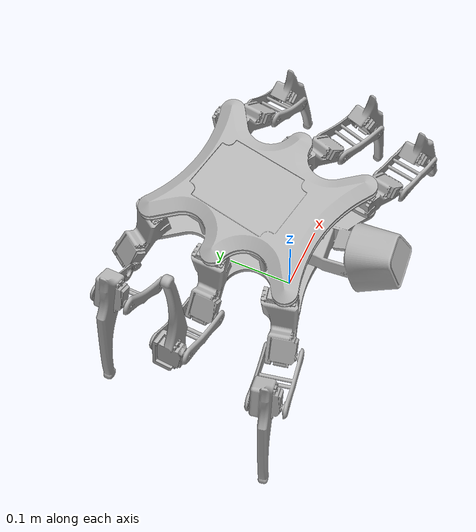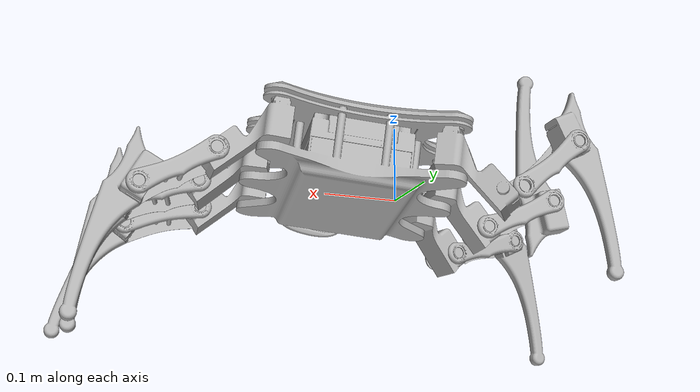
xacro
<?xml version="1.0" ?>
<robot name="zamin" xmlns:xacro="http://www.ros.org/wiki/xacro">

<xacro:include filename="$(find zamin_description)/urdf/materials.xacro" />
<xacro:include filename="$(find zamin_description)/urdf/zamin.trans" />
<xacro:include filename="$(find zamin_description)/urdf/zamin.gazebo" />
<link name="base_link">
  <inertial>
    <origin xyz="0.1000352418955988 0.06495559041692857 0.006960329203092366" rpy="0 0 0"/>
    <mass value="14.09466584247892"/>
    <inertia ixx="0.167546" iyy="0.075339" izz="0.199615" ixy="-0.012339" iyz="0.003184" ixz="-0.003868"/>
  </inertial>
  <visual>
    <origin xyz="0 0 0" rpy="0 0 0"/>
    <geometry>
      <mesh filename="package://zamin_description/meshes/base_link.stl" scale="0.001 0.001 0.001"/>
    </geometry>
    <material name="silver"/>
  </visual>
  <collision>
    <origin xyz="0 0 0" rpy="0 0 0"/>
    <geometry>
      <mesh filename="package://zamin_description/meshes/base_link.stl" scale="0.001 0.001 0.001"/>
    </geometry>
  </collision>
</link>

<link name="leg_1_link_2_1">
  <inertial>
    <origin xyz="-0.020798247907869903 -0.003004122621169035 -0.05840364105605461" rpy="0 0 0"/>
    <mass value="1.012661950148346"/>
    <inertia ixx="0.001014" iyy="0.001236" izz="0.000891" ixy="-0.000197" iyz="-0.00022" ixz="-0.000489"/>
  </inertial>
  <visual>
    <origin xyz="0.031628 0.00646 -0.021757" rpy="0 0 0"/>
    <geometry>
      <mesh filename="package://zamin_description/meshes/leg_1_link_2_1.stl" scale="0.001 0.001 0.001"/>
    </geometry>
    <material name="silver"/>
  </visual>
  <collision>
    <origin xyz="0.031628 0.00646 -0.021757" rpy="0 0 0"/>
    <geometry>
      <mesh filename="package://zamin_description/meshes/leg_1_link_2_1.stl" scale="0.001 0.001 0.001"/>
    </geometry>
  </collision>
</link>

<link name="leg_1_link_3_1">
  <inertial>
    <origin xyz="-0.05232794213563882 0.015850438170881664 0.012387465467738626" rpy="0 0 0"/>
    <mass value="0.22871600239093776"/>
    <inertia ixx="0.000208" iyy="0.000275" izz="0.000422" ixy="-1e-05" iyz="1.8e-05" ixz="6.7e-05"/>
  </inertial>
  <visual>
    <origin xyz="0.080903 0.053284 0.063455" rpy="0 0 0"/>
    <geometry>
      <mesh filename="package://zamin_description/meshes/leg_1_link_3_1.stl" scale="0.001 0.001 0.001"/>
    </geometry>
    <material name="silver"/>
  </visual>
  <collision>
    <origin xyz="0.080903 0.053284 0.063455" rpy="0 0 0"/>
    <geometry>
      <mesh filename="package://zamin_description/meshes/leg_1_link_3_1.stl" scale="0.001 0.001 0.001"/>
    </geometry>
  </collision>
</link>

<link name="leg_1_link_1_1">
  <inertial>
    <origin xyz="-0.024118708207036738 0.023198280722906535 -0.02416394528421939" rpy="0 0 0"/>
    <mass value="0.907399585528797"/>
    <inertia ixx="0.0028" iyy="0.003123" izz="0.0006" ixy="-0.00015" iyz="-0.00034" ixz="-0.000941"/>
  </inertial>
  <visual>
    <origin xyz="0.175395 0.070243 0.035462" rpy="0 0 0"/>
    <geometry>
      <mesh filename="package://zamin_description/meshes/leg_1_link_1_1.stl" scale="0.001 0.001 0.001"/>
    </geometry>
    <material name="silver"/>
  </visual>
  <collision>
    <origin xyz="0.175395 0.070243 0.035462" rpy="0 0 0"/>
    <geometry>
      <mesh filename="package://zamin_description/meshes/leg_1_link_1_1.stl" scale="0.001 0.001 0.001"/>
    </geometry>
  </collision>
</link>

<link name="leg_2_link_3__1__1">
  <inertial>
    <origin xyz="-0.020572592986036774 0.0037045224840009106 -0.05844286708274243" rpy="0 0 0"/>
    <mass value="1.0126607300527286"/>
    <inertia ixx="0.000943" iyy="0.001319" izz="0.000879" ixy="-0.000108" iyz="-8.7e-05" ixz="-0.00053"/>
  </inertial>
  <visual>
    <origin xyz="0.012855 -0.122421 -0.022834" rpy="0 0 0"/>
    <geometry>
      <mesh filename="package://zamin_description/meshes/leg_2_link_3__1__1.stl" scale="0.001 0.001 0.001"/>
    </geometry>
    <material name="silver"/>
  </visual>
  <collision>
    <origin xyz="0.012855 -0.122421 -0.022834" rpy="0 0 0"/>
    <geometry>
      <mesh filename="package://zamin_description/meshes/leg_2_link_3__1__1.stl" scale="0.001 0.001 0.001"/>
    </geometry>
  </collision>
</link>

<link name="leg_2_link_2_1">
  <inertial>
    <origin xyz="-0.044921169422652035 0.02724896339450003 0.019557009209572804" rpy="0 0 0"/>
    <mass value="0.22871574861196214"/>
    <inertia ixx="0.000229" iyy="0.000276" izz="0.000399" ixy="3e-06" iyz="-4e-06" ixz="9.5e-05"/>
  </inertial>
  <visual>
    <origin xyz="0.071248 -0.091046 0.063695" rpy="0 0 0"/>
    <geometry>
      <mesh filename="package://zamin_description/meshes/leg_2_link_2_1.stl" scale="0.001 0.001 0.001"/>
    </geometry>
    <material name="silver"/>
  </visual>
  <collision>
    <origin xyz="0.071248 -0.091046 0.063695" rpy="0 0 0"/>
    <geometry>
      <mesh filename="package://zamin_description/meshes/leg_2_link_2_1.stl" scale="0.001 0.001 0.001"/>
    </geometry>
  </collision>
</link>

<link name="leg_3_link_3_1">
  <inertial>
    <origin xyz="-0.01471532830032863 0.017066498243044487 -0.05783367655412228" rpy="0 0 0"/>
    <mass value="1.0126620006859057"/>
    <inertia ixx="0.000964" iyy="0.001294" izz="0.000883" ixy="0.000135" iyz="0.000218" ixz="-0.000494"/>
  </inertial>
  <visual>
    <origin xyz="-0.02145 -0.24803 -0.025922" rpy="0 0 0"/>
    <geometry>
      <mesh filename="package://zamin_description/meshes/leg_3_link_3_1.stl" scale="0.001 0.001 0.001"/>
    </geometry>
    <material name="silver"/>
  </visual>
  <collision>
    <origin xyz="-0.02145 -0.24803 -0.025922" rpy="0 0 0"/>
    <geometry>
      <mesh filename="package://zamin_description/meshes/leg_3_link_3_1.stl" scale="0.001 0.001 0.001"/>
    </geometry>
  </collision>
</link>

<link name="leg_3_link_2_1">
  <inertial>
    <origin xyz="-0.02490321172110873 0.04393892851157011 0.024331856966839732" rpy="0 0 0"/>
    <mass value="0.2287158182027981"/>
    <inertia ixx="0.000248" iyy="0.000272" izz="0.000385" ixy="1.3e-05" iyz="-6.3e-05" ixz="8.6e-05"/>
  </inertial>
  <visual>
    <origin xyz="0.042897 -0.255314 0.061759" rpy="0 0 0"/>
    <geometry>
      <mesh filename="package://zamin_description/meshes/leg_3_link_2_1.stl" scale="0.001 0.001 0.001"/>
    </geometry>
    <material name="silver"/>
  </visual>
  <collision>
    <origin xyz="0.042897 -0.255314 0.061759" rpy="0 0 0"/>
    <geometry>
      <mesh filename="package://zamin_description/meshes/leg_3_link_2_1.stl" scale="0.001 0.001 0.001"/>
    </geometry>
  </collision>
</link>

<link name="leg_3_link_1_1">
  <inertial>
    <origin xyz="0.008717952333481188 0.029799584273488944 -0.027197642277439673" rpy="0 0 0"/>
    <mass value="0.9073986789846695"/>
    <inertia ixx="0.00313" iyy="0.003181" izz="0.000211" ixy="8e-06" iyz="3.3e-05" ixz="0.000122"/>
  </inertial>
  <visual>
    <origin xyz="0.11862 -0.300684 0.014775" rpy="0 0 0"/>
    <geometry>
      <mesh filename="package://zamin_description/meshes/leg_3_link_1_1.stl" scale="0.001 0.001 0.001"/>
    </geometry>
    <material name="silver"/>
  </visual>
  <collision>
    <origin xyz="0.11862 -0.300684 0.014775" rpy="0 0 0"/>
    <geometry>
      <mesh filename="package://zamin_description/meshes/leg_3_link_1_1.stl" scale="0.001 0.001 0.001"/>
    </geometry>
  </collision>
</link>

<link name="leg_4_link_3_1">
  <inertial>
    <origin xyz="0.034731263262566064 -0.00392802530506986 -0.05135714502309486" rpy="0 0 0"/>
    <mass value="1.0132520108724496"/>
    <inertia ixx="0.000783" iyy="0.00123" izz="0.001141" ixy="0.000259" iyz="-0.000176" ixz="0.000456"/>
  </inertial>
  <visual>
    <origin xyz="-0.178057 0.050638 -0.048896" rpy="0 0 0"/>
    <geometry>
      <mesh filename="package://zamin_description/meshes/leg_4_link_3_1.stl" scale="0.001 0.001 0.001"/>
    </geometry>
    <material name="silver"/>
  </visual>
  <collision>
    <origin xyz="-0.178057 0.050638 -0.048896" rpy="0 0 0"/>
    <geometry>
      <mesh filename="package://zamin_description/meshes/leg_4_link_3_1.stl" scale="0.001 0.001 0.001"/>
    </geometry>
  </collision>
</link>

<link name="leg_4_link_2_1">
  <inertial>
    <origin xyz="0.052809765042208995 0.014176083454792127 -0.010373790935542228" rpy="0 0 0"/>
    <mass value="0.2286696896275042"/>
    <inertia ixx="0.000203" iyy="0.000273" izz="0.000428" ixy="1.5e-05" iyz="-1.5e-05" ixz="5.6e-05"/>
  </inertial>
  <visual>
    <origin xyz="-0.24643 0.099265 0.021536" rpy="0 0 0"/>
    <geometry>
      <mesh filename="package://zamin_description/meshes/leg_4_link_2_1.stl" scale="0.001 0.001 0.001"/>
    </geometry>
    <material name="silver"/>
  </visual>
  <collision>
    <origin xyz="-0.24643 0.099265 0.021536" rpy="0 0 0"/>
    <geometry>
      <mesh filename="package://zamin_description/meshes/leg_4_link_2_1.stl" scale="0.001 0.001 0.001"/>
    </geometry>
  </collision>
</link>

<link name="leg_4_link_1_1">
  <inertial>
    <origin xyz="0.029407532301332473 0.022677687832287977 -0.018492432077358373" rpy="0 0 0"/>
    <mass value="0.9074869947367368"/>
    <inertia ixx="0.002339" iyy="0.003123" izz="0.001068" ixy="0.00022" iyz="-0.000309" ixz="0.001301"/>
  </inertial>
  <visual>
    <origin xyz="-0.341523 0.119515 0.044929" rpy="0 0 0"/>
    <geometry>
      <mesh filename="package://zamin_description/meshes/leg_4_link_1_1.stl" scale="0.001 0.001 0.001"/>
    </geometry>
    <material name="silver"/>
  </visual>
  <collision>
    <origin xyz="-0.341523 0.119515 0.044929" rpy="0 0 0"/>
    <geometry>
      <mesh filename="package://zamin_description/meshes/leg_4_link_1_1.stl" scale="0.001 0.001 0.001"/>
    </geometry>
  </collision>
</link>

<link name="leg_5_link_3_1">
  <inertial>
    <origin xyz="0.03418268792955556 -0.007023107521480734 -0.051395778898290834" rpy="0 0 0"/>
    <mass value="1.0132520108724496"/>
    <inertia ixx="0.000844" iyy="0.001174" izz="0.001136" ixy="0.000296" iyz="-0.000224" ixz="0.000437"/>
  </inertial>
  <visual>
    <origin xyz="-0.212362 -0.074971 -0.051984" rpy="0 0 0"/>
    <geometry>
      <mesh filename="package://zamin_description/meshes/leg_5_link_3_1.stl" scale="0.001 0.001 0.001"/>
    </geometry>
    <material name="silver"/>
  </visual>
  <collision>
    <origin xyz="-0.212362 -0.074971 -0.051984" rpy="0 0 0"/>
    <geometry>
      <mesh filename="package://zamin_description/meshes/leg_5_link_3_1.stl" scale="0.001 0.001 0.001"/>
    </geometry>
  </collision>
</link>

<link name="leg_5_llink_2_1">
  <inertial>
    <origin xyz="0.05422235004203746 0.008389679172791733 -0.0114936184371848" rpy="0 0 0"/>
    <mass value="0.2286696896275042"/>
    <inertia ixx="0.000206" iyy="0.00027" izz="0.000429" ixy="2.2e-05" iyz="-2.2e-05" ixz="5.2e-05"/>
  </inertial>
  <visual>
    <origin xyz="-0.275077 -0.020076 0.019104" rpy="0 0 0"/>
    <geometry>
      <mesh filename="package://zamin_description/meshes/leg_5_llink_2_1.stl" scale="0.001 0.001 0.001"/>
    </geometry>
    <material name="silver"/>
  </visual>
  <collision>
    <origin xyz="-0.275077 -0.020076 0.019104" rpy="0 0 0"/>
    <geometry>
      <mesh filename="package://zamin_description/meshes/leg_5_llink_2_1.stl" scale="0.001 0.001 0.001"/>
    </geometry>
  </collision>
</link>

<link name="leg_5_link_1_1">
  <inertial>
    <origin xyz="0.028061540825260523 0.020927835811465526 -0.022263178357636942" rpy="0 0 0"/>
    <mass value="0.9074869947367368"/>
    <inertia ixx="0.002789" iyy="0.003125" izz="0.000616" ixy="0.000147" iyz="-0.000317" ixz="0.000967"/>
  </inertial>
  <visual>
    <origin xyz="-0.367591 0.010327 0.041837" rpy="0 0 0"/>
    <geometry>
      <mesh filename="package://zamin_description/meshes/leg_5_link_1_1.stl" scale="0.001 0.001 0.001"/>
    </geometry>
    <material name="silver"/>
  </visual>
  <collision>
    <origin xyz="-0.367591 0.010327 0.041837" rpy="0 0 0"/>
    <geometry>
      <mesh filename="package://zamin_description/meshes/leg_5_link_1_1.stl" scale="0.001 0.001 0.001"/>
    </geometry>
  </collision>
</link>

<link name="leg_6_link_3_1">
  <inertial>
    <origin xyz="0.034896122067995666 -0.0020427463356449127 -0.051355316337585624" rpy="0 0 0"/>
    <mass value="1.0132520108724496"/>
    <inertia ixx="0.000751" iyy="0.00126" izz="0.001143" ixy="0.00023" iyz="-0.000146" ixz="0.000465"/>
  </inertial>
  <visual>
    <origin xyz="-0.231135 -0.203852 -0.053061" rpy="0 0 0"/>
    <geometry>
      <mesh filename="package://zamin_description/meshes/leg_6_link_3_1.stl" scale="0.001 0.001 0.001"/>
    </geometry>
    <material name="silver"/>
  </visual>
  <collision>
    <origin xyz="-0.231135 -0.203852 -0.053061" rpy="0 0 0"/>
    <geometry>
      <mesh filename="package://zamin_description/meshes/leg_6_link_3_1.stl" scale="0.001 0.001 0.001"/>
    </geometry>
  </collision>
</link>

<link name="leg_6_link_2_1">
  <inertial>
    <origin xyz="0.04752311177088503 0.018310662194375382 -0.023426808330500083" rpy="0 0 0"/>
    <mass value="0.2286696896275042"/>
    <inertia ixx="0.000239" iyy="0.000276" izz="0.000389" ixy="5e-06" iyz="-1.6e-05" ixz="0.000102"/>
  </inertial>
  <visual>
    <origin xyz="-0.302567 -0.159289 0.017023" rpy="0 0 0"/>
    <geometry>
      <mesh filename="package://zamin_description/meshes/leg_6_link_2_1.stl" scale="0.001 0.001 0.001"/>
    </geometry>
    <material name="silver"/>
  </visual>
  <collision>
    <origin xyz="-0.302567 -0.159289 0.017023" rpy="0 0 0"/>
    <geometry>
      <mesh filename="package://zamin_description/meshes/leg_6_link_2_1.stl" scale="0.001 0.001 0.001"/>
    </geometry>
  </collision>
</link>

<link name="leg_6_link_1_1">
  <inertial>
    <origin xyz="0.02549629841380968 0.02479671305703493 -0.021358022325784654" rpy="0 0 0"/>
    <mass value="0.9074869947367368"/>
    <inertia ixx="0.002597" iyy="0.003153" izz="0.000779" ixy="0.000129" iyz="-0.000217" ixz="0.001143"/>
  </inertial>
  <visual>
    <origin xyz="-0.390694 -0.146611 0.062552" rpy="0 0 0"/>
    <geometry>
      <mesh filename="package://zamin_description/meshes/leg_6_link_1_1.stl" scale="0.001 0.001 0.001"/>
    </geometry>
    <material name="silver"/>
  </visual>
  <collision>
    <origin xyz="-0.390694 -0.146611 0.062552" rpy="0 0 0"/>
    <geometry>
      <mesh filename="package://zamin_description/meshes/leg_6_link_1_1.stl" scale="0.001 0.001 0.001"/>
    </geometry>
  </collision>
</link>

<link name="leg_2_link_1_1">
  <inertial>
    <origin xyz="0.014950984513356164 0.027472482543958468 0.026934944841813708" rpy="0 0 0"/>
    <mass value="0.9073984436402253"/>
    <inertia ixx="0.003087" iyy="0.003172" izz="0.000265" ixy="3.2e-05" iyz="9e-05" ixz="-0.000402"/>
  </inertial>
  <visual>
    <origin xyz="0.162465 -0.095774 0.022988" rpy="0 0 0"/>
    <geometry>
      <mesh filename="package://zamin_description/meshes/leg_2_link_1_1.stl" scale="0.001 0.001 0.001"/>
    </geometry>
    <material name="silver"/>
  </visual>
  <collision>
    <origin xyz="0.162465 -0.095774 0.022988" rpy="0 0 0"/>
    <geometry>
      <mesh filename="package://zamin_description/meshes/leg_2_link_1_1.stl" scale="0.001 0.001 0.001"/>
    </geometry>
  </collision>
</link>

<joint name="Revolute 63" type="continuous">
  <origin xyz="-0.031628 -0.00646 0.021757" rpy="0 0 0"/>
  <parent link="base_link"/>
  <child link="leg_1_link_2_1"/>
  <axis xyz="0.126261 -0.010099 -0.991946"/>
</joint>

<joint name="Revolute 64" type="continuous">
  <origin xyz="-0.049275 -0.046824 -0.085212" rpy="0 0 0"/>
  <parent link="leg_1_link_2_1"/>
  <child link="leg_1_link_3_1"/>
  <axis xyz="0.186207 -0.981932 0.033699"/>
</joint>

<joint name="Revolute 65" type="continuous">
  <origin xyz="-0.094492 -0.016959 0.027993" rpy="0 0 0"/>
  <parent link="leg_1_link_3_1"/>
  <child link="leg_1_link_1_1"/>
  <axis xyz="0.186207 -0.981932 0.033699"/>
</joint>

<joint name="Revolute 66" type="continuous">
  <origin xyz="-0.012855 0.122421 0.022834" rpy="0 0 0"/>
  <parent link="base_link"/>
  <child link="leg_2_link_3__1__1"/>
  <axis xyz="0.126261 -0.010099 -0.991946"/>
</joint>

<joint name="Revolute 67" type="continuous">
  <origin xyz="-0.058393 -0.031375 -0.086529" rpy="0 0 0"/>
  <parent link="leg_2_link_3__1__1"/>
  <child link="leg_2_link_2_1"/>
  <axis xyz="-0.050076 -0.998738 0.003795"/>
</joint>

<joint name="Revolute 69" type="continuous">
  <origin xyz="0.02145 0.24803 0.025922" rpy="0 0 0"/>
  <parent link="base_link"/>
  <child link="leg_3_link_3_1"/>
  <axis xyz="0.126261 -0.010099 -0.991946"/>
</joint>

<joint name="Revolute 70" type="continuous">
  <origin xyz="-0.064347 0.007284 -0.087681" rpy="0 0 0"/>
  <parent link="leg_3_link_3_1"/>
  <child link="leg_3_link_2_1"/>
  <axis xyz="-0.540263 -0.839339 -0.060222"/>
</joint>

<joint name="Revolute 71" type="continuous">
  <origin xyz="-0.075723 0.04537 0.046984" rpy="0 0 0"/>
  <parent link="leg_3_link_2_1"/>
  <child link="leg_3_link_1_1"/>
  <axis xyz="-0.540263 -0.839339 -0.060222"/>
</joint>

<joint name="Revolute 72" type="continuous">
  <origin xyz="0.178057 -0.050638 0.048896" rpy="0 0 0"/>
  <parent link="base_link"/>
  <child link="leg_4_link_3_1"/>
  <axis xyz="0.126261 -0.010099 -0.991946"/>
</joint>

<joint name="Revolute 73" type="continuous">
  <origin xyz="0.068373 -0.048627 -0.070432" rpy="0 0 0"/>
  <parent link="leg_4_link_3_1"/>
  <child link="leg_4_link_2_1"/>
  <axis xyz="-0.21227 -0.977062 -0.017071"/>
</joint>

<joint name="Revolute 74" type="continuous">
  <origin xyz="0.095093 -0.02025 -0.023393" rpy="0 0 0"/>
  <parent link="leg_4_link_2_1"/>
  <child link="leg_4_link_1_1"/>
  <axis xyz="0.21227 0.977062 0.017071"/>
</joint>

<joint name="Revolute 75" type="continuous">
  <origin xyz="0.212362 0.074971 0.051984" rpy="0 0 0"/>
  <parent link="base_link"/>
  <child link="leg_5_link_3_1"/>
  <axis xyz="0.126261 -0.010099 -0.991946"/>
</joint>

<joint name="Revolute 76" type="continuous">
  <origin xyz="0.062715 -0.054895 -0.071088" rpy="0 0 0"/>
  <parent link="leg_5_link_3_1"/>
  <child link="leg_5_llink_2_1"/>
  <axis xyz="-0.318912 -0.947279 -0.030948"/>
</joint>

<joint name="Revolute 77" type="continuous">
  <origin xyz="0.092514 -0.030403 -0.022733" rpy="0 0 0"/>
  <parent link="leg_5_llink_2_1"/>
  <child link="leg_5_link_1_1"/>
  <axis xyz="0.318912 0.947279 0.030948"/>
</joint>

<joint name="Revolute 78" type="continuous">
  <origin xyz="0.231135 0.203852 0.053061" rpy="0 0 0"/>
  <parent link="base_link"/>
  <child link="leg_6_link_3_1"/>
  <axis xyz="0.126261 -0.010099 -0.991946"/>
</joint>

<joint name="Revolute 79" type="continuous">
  <origin xyz="0.071432 -0.044563 -0.070084" rpy="0 0 0"/>
  <parent link="leg_6_link_3_1"/>
  <child link="leg_6_link_2_1"/>
  <axis xyz="-0.146743 -0.989137 -0.008608"/>
</joint>

<joint name="Revolute 80" type="continuous">
  <origin xyz="0.088127 -0.012678 -0.045529" rpy="0 0 0"/>
  <parent link="leg_6_link_2_1"/>
  <child link="leg_6_link_1_1"/>
  <axis xyz="0.146743 0.989137 0.008608"/>
</joint>

<joint name="Revolute 81" type="continuous">
  <origin xyz="-0.091217 0.004728 0.040707" rpy="0 0 0"/>
  <parent link="leg_2_link_2_1"/>
  <child link="leg_2_link_1_1"/>
  <axis xyz="-0.050076 -0.998738 0.003795"/>
</joint>

</robot>

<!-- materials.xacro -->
<robot name="zamin" xmlns:xacro="http://www.ros.org/wiki/xacro" >

<material name="silver">
  <color rgba="0.700 0.700 0.700 1.000"/>
</material>

</robot>

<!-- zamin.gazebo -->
<robot name="zamin" xmlns:xacro="http://www.ros.org/wiki/xacro" >

<xacro:property name="body_color" value="Gazebo/Silver" />

<gazebo>
  <plugin name="control" filename="libgazebo_ros_control.so"/>
</gazebo>
<gazebo reference="base_link">
  <material>${body_color}</material>
  <mu1>0.2</mu1>
  <mu2>0.2</mu2>
  <selfCollide>true</selfCollide>
  <gravity>true</gravity>
</gazebo>

<gazebo reference="leg_1_link_2_1">
  <material>${body_color}</material>
  <mu1>0.2</mu1>
  <mu2>0.2</mu2>
  <selfCollide>true</selfCollide>
</gazebo>

<gazebo reference="leg_1_link_3_1">
  <material>${body_color}</material>
  <mu1>0.2</mu1>
  <mu2>0.2</mu2>
  <selfCollide>true</selfCollide>
</gazebo>

<gazebo reference="leg_1_link_1_1">
  <material>${body_color}</material>
  <mu1>0.2</mu1>
  <mu2>0.2</mu2>
  <selfCollide>true</selfCollide>
</gazebo>

<gazebo reference="leg_2_link_3__1__1">
  <material>${body_color}</material>
  <mu1>0.2</mu1>
  <mu2>0.2</mu2>
  <selfCollide>true</selfCollide>
</gazebo>

<gazebo reference="leg_2_link_2_1">
  <material>${body_color}</material>
  <mu1>0.2</mu1>
  <mu2>0.2</mu2>
  <selfCollide>true</selfCollide>
</gazebo>

<gazebo reference="leg_3_link_3_1">
  <material>${body_color}</material>
  <mu1>0.2</mu1>
  <mu2>0.2</mu2>
  <selfCollide>true</selfCollide>
</gazebo>

<gazebo reference="leg_3_link_2_1">
  <material>${body_color}</material>
  <mu1>0.2</mu1>
  <mu2>0.2</mu2>
  <selfCollide>true</selfCollide>
</gazebo>

<gazebo reference="leg_3_link_1_1">
  <material>${body_color}</material>
  <mu1>0.2</mu1>
  <mu2>0.2</mu2>
  <selfCollide>true</selfCollide>
</gazebo>

<gazebo reference="leg_4_link_3_1">
  <material>${body_color}</material>
  <mu1>0.2</mu1>
  <mu2>0.2</mu2>
  <selfCollide>true</selfCollide>
</gazebo>

<gazebo reference="leg_4_link_2_1">
  <material>${body_color}</material>
  <mu1>0.2</mu1>
  <mu2>0.2</mu2>
  <selfCollide>true</selfCollide>
</gazebo>

<gazebo reference="leg_4_link_1_1">
  <material>${body_color}</material>
  <mu1>0.2</mu1>
  <mu2>0.2</mu2>
  <selfCollide>true</selfCollide>
</gazebo>

<gazebo reference="leg_5_link_3_1">
  <material>${body_color}</material>
  <mu1>0.2</mu1>
  <mu2>0.2</mu2>
  <selfCollide>true</selfCollide>
</gazebo>

<gazebo reference="leg_5_llink_2_1">
  <material>${body_color}</material>
  <mu1>0.2</mu1>
  <mu2>0.2</mu2>
  <selfCollide>true</selfCollide>
</gazebo>

<gazebo reference="leg_5_link_1_1">
  <material>${body_color}</material>
  <mu1>0.2</mu1>
  <mu2>0.2</mu2>
  <selfCollide>true</selfCollide>
</gazebo>

<gazebo reference="leg_6_link_3_1">
  <material>${body_color}</material>
  <mu1>0.2</mu1>
  <mu2>0.2</mu2>
  <selfCollide>true</selfCollide>
</gazebo>

<gazebo reference="leg_6_link_2_1">
  <material>${body_color}</material>
  <mu1>0.2</mu1>
  <mu2>0.2</mu2>
  <selfCollide>true</selfCollide>
</gazebo>

<gazebo reference="leg_6_link_1_1">
  <material>${body_color}</material>
  <mu1>0.2</mu1>
  <mu2>0.2</mu2>
  <selfCollide>true</selfCollide>
</gazebo>

<gazebo reference="leg_2_link_1_1">
  <material>${body_color}</material>
  <mu1>0.2</mu1>
  <mu2>0.2</mu2>
  <selfCollide>true</selfCollide>
</gazebo>

</robot>
